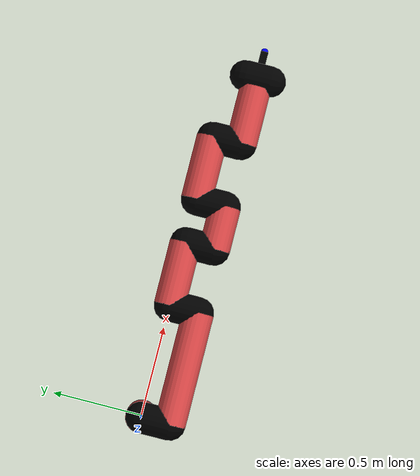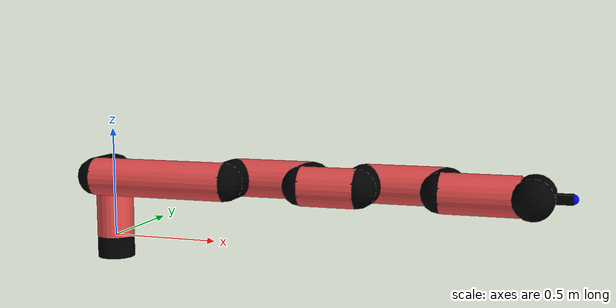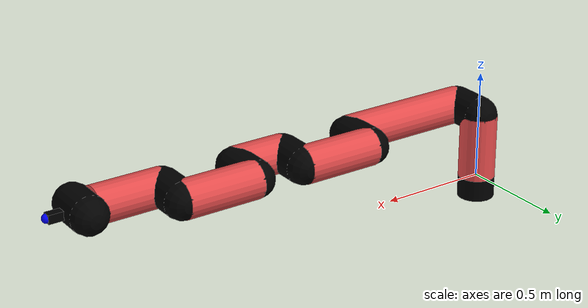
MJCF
<mujoco model="manipulator">
		<compiler angle="degree" coordinate="local" inertiafromgeom="auto" meshdir="meshes/"/>
		<option gravity="0 0 0" integrator="RK4" iterations="30" timestep="0.01"/>

		<default>
		<joint armature="1" limited="true" stiffness="10" damping="15" frictionloss="5.0"/>
		<geom conaffinity="1" condim="3" contype="1" friction=".5 .1 .1" margin="0.002"/>
		<motor ctrllimited="true"/>
		<position ctrllimited="true"/>
		</default>

		<asset>
		<texture builtin="gradient" height="100" rgb1="1.0 1.0 1.0" rgb2="1.0 1.0 1.0" type="skybox" width="100"/>
		<texture builtin="flat" height="32" name="arm_tex" rgb1="0.9 0.3 0.3" type="2d" width="32"/>
		<texture builtin="flat" height="32" name="gripper_tex" rgb1="0.0 0.0 0.0" type="cube" width="32"/>

		<material name="arm_mat" shininess="0.1" specular="0.1" texture="arm_tex"/>
		<material name="gripper_mat" shininess="1" specular="1" texture="gripper_tex"/>
		</asset>

		<worldbody>
		<light cutoff="45" diffuse=".8 .8 .8" dir="0 0.16 -1" directional="false" name="light" pos="0 -2.0 8.0" specular="0.3 0.3 0.3"/>

		<body name="base_link" pos="0 0 -0.1">
		<geom fromto="0 0 0 0 0 0.1" material="arm_mat" name="base_link" rgba="0.0 0.0 0.0 1" size="0.085" type="cylinder"/>
		</body>

		<body name="l1" pos="0 0 0">
<geom fromto="0 0 0 0 0 0.3" material="arm_mat" name="l1" rgba="0.9 0.3 0.3 1" size="0.085" type="cylinder"/>
<geom fromto="0 0 0.3 0 -0.16 0.3" material="arm_mat" name="l1_ex" rgba="0.0 0.0 0.0 1" size="0.085" type="capsule"/>
<joint axis="0 0 1" name="j1" pos="0 0 0" range="-90 90" damping="32.7" frictionloss="11.31"/>

<body name="l2" pos="0 -0.16 0.3">
<geom fromto="0 0 0 0.62 0 0" material="arm_mat" name="l2" rgba="0.9 0.3 0.3 1" size="0.085" type="cylinder"/>
<geom fromto="0.62 0 0 0.62 0.16 0" material="arm_mat" name="l2_ex" rgba="0.0 0.0 0.0 1" size="0.085" type="capsule"/>
<joint axis="0.0 1.0 0.0" name="j2" pos="0 0 0" range="-90 60" damping="30.85" frictionloss="7.52"/>

<body name="l3" pos="0.62 0.16 0">
<geom fromto="0 0 0 0.35 0 0" material="arm_mat" name="l3" rgba="0.9 0.3 0.3 1" size="0.085" type="cylinder"/>
<geom fromto="0.35 0 0 0.35 -0.16 0" material="arm_mat" name="l3_ex" rgba="0.0 0.0 0.0 1" size="0.085" type="capsule"/>
<joint axis="0.0 1.0 0.0" name="j3" pos="0 0 0" range="-30 60" damping="23.32" frictionloss="9.06"/>

<body name="l4" pos="0.35 -0.16 0">
<geom fromto="0 0 0 0.24 0 0" material="arm_mat" name="l4" rgba="0.9 0.3 0.3 1" size="0.085" type="cylinder"/>
<geom fromto="0.24 0 0 0.24 0.16 0" material="arm_mat" name="l4_ex" rgba="0.0 0.0 0.0 1" size="0.085" type="capsule"/>
<joint axis="0.0 1.0 0.0" name="j4" pos="0 0 0" range="-30 60" damping="33.27" frictionloss="10.45"/>

<body name="l5" pos="0.24 0.16 0">
<geom fromto="0 0 0 0.35 0 0" material="arm_mat" name="l5" rgba="0.9 0.3 0.3 1" size="0.085" type="cylinder"/>
<geom fromto="0.35 0 0 0.35 -0.16 0" material="arm_mat" name="l5_ex" rgba="0.0 0.0 0.0 1" size="0.085" type="capsule"/>
<joint axis="0.0 1.0 0.0" name="j5" pos="0 0 0" range="-30 60" damping="23.59" frictionloss="8.47"/>

<body name="l6" pos="0.35 -0.16 0">
<geom fromto="0 0 0 0.32 0 0" material="arm_mat" name="l6" rgba="0.9 0.3 0.3 1" size="0.085" type="cylinder"/>
<joint axis="0.0 1.0 0.0" name="j6" pos="0 0 0" range="-30 60" damping="25.75" frictionloss="9.46"/>

<body name="gripper" pos="0.32 0 0">
<geom fromto="0.05 -0.07 0 0.05 0.07 0" material="gripper_mat" name="gripper" rgba="0.0 0.0 0.0 1" size="0.085" type="capsule"/><joint axis="1 0 0" name="j7" pos="0 0 0" range="-90 90" damping="15" frictionloss="5.0"/><body name="finger" pos="0.1 0 0">
<geom fromto="0 0.0 0 0.1 0.0 0" material="gripper_mat" name="finger" rgba="0.0 0.0 0.0 1" size="0.020 0.06 0.06" type="box"/>
</body>
<site name="current" pos="0.2 0. 0.0" rgba="0. 0. 1.0 1" size="0.02" type="sphere"/>
</body>
</body>
</body>
</body>
</body>
</body>
</body>
</worldbody>
<actuator>
<motor ctrllimited="true" ctrlrange="-1.0 1.0" joint="j1" gear="64.78"/>
<motor ctrllimited="true" ctrlrange="-1.0 1.0" joint="j2" gear="71.42"/>
<motor ctrllimited="true" ctrlrange="-1.0 1.0" joint="j3" gear="87.14"/>
<motor ctrllimited="true" ctrlrange="-1.0 1.0" joint="j4" gear="70.74"/>
<motor ctrllimited="true" ctrlrange="-1.0 1.0" joint="j5" gear="90.58"/>
<motor ctrllimited="true" ctrlrange="-1.0 1.0" joint="j6" gear="93.93"/>
<motor ctrllimited="true" ctrlrange="-1.0 1.0" joint="j7" gear="80"/>
</actuator>
</mujoco>
